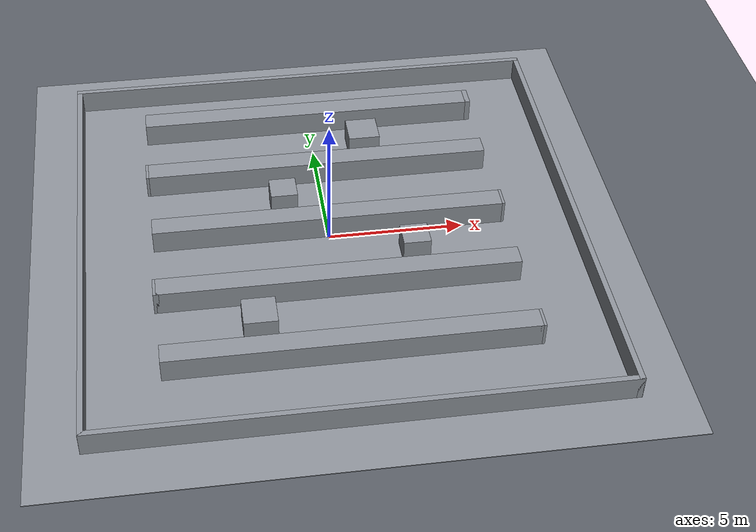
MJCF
<!-- Generated by robot_lab_maps/tools/gen_mjcf_worlds.py from
     maps/nav_warehouse/worlds/nav_warehouse.world - do not edit by hand. -->
<mujoco model="nav_warehouse">
  <option gravity="0 0 -9.81" />
  <compiler angle="radian" />
  <worldbody>
    <geom type="plane" size="100 100 0.1" contype="0" conaffinity="0" rgba="0.35 0.37 0.4 1" />
    <geom pos="0 0 -0.05" quat="1 0 0 0" rgba="0.55 0.57 0.6 1" type="box" size="11 11 0.05" />
    <geom pos="0 -9.1 0" quat="1 0 0 0" rgba="0.55 0.57 0.6 1" type="box" size="9.2 0.1 0.9" />
    <geom pos="0 9.1 0" quat="1 0 0 0" rgba="0.55 0.57 0.6 1" type="box" size="9.2 0.1 0.9" />
    <geom pos="-9.1 0 0" quat="1 0 0 0" rgba="0.55 0.57 0.6 1" type="box" size="0.1 9.2 0.9" />
    <geom pos="9.1 0 0" quat="1 0 0 0" rgba="0.55 0.57 0.6 1" type="box" size="0.1 9.2 0.9" />
    <geom pos="0 -6 0" quat="1 0 0 0" rgba="0.55 0.57 0.6 1" type="box" size="6.5 0.4 0.9" />
    <geom pos="0 -2.8 0" quat="1 0 0 0" rgba="0.55 0.57 0.6 1" type="box" size="6.5 0.4 0.9" />
    <geom pos="0 0.4 0" quat="1 0 0 0" rgba="0.55 0.57 0.6 1" type="box" size="6.5 0.4 0.9" />
    <geom pos="0 3.6 0" quat="1 0 0 0" rgba="0.55 0.57 0.6 1" type="box" size="6.5 0.4 0.9" />
    <geom pos="0 6.8 0" quat="1 0 0 0" rgba="0.55 0.57 0.6 1" type="box" size="6.5 0.4 0.9" />
    <geom pos="-3 -4.4 0" quat="1 0 0 0" rgba="0.55 0.57 0.6 1" type="box" size="0.6 0.6 0.9" />
    <geom pos="3 -1.2 0" quat="1 0 0 0" rgba="0.55 0.57 0.6 1" type="box" size="0.5 0.5 0.9" />
    <geom pos="-1.5 2 0" quat="1 0 0 0" rgba="0.55 0.57 0.6 1" type="box" size="0.5 0.5 0.9" />
    <geom pos="2 5.2 0" quat="1 0 0 0" rgba="0.55 0.57 0.6 1" type="box" size="0.6 0.6 0.9" />
    <geom pos="6.5 -6 0" quat="1 0 0 0" rgba="0.55 0.57 0.6 1" type="box" size="0.1 0.4 0.9" />
    <geom pos="-6.5 -2.8 0" quat="1 0 0 0" rgba="0.55 0.57 0.6 1" type="box" size="0.1 0.4 0.9" />
    <geom pos="6.5 0.4 0" quat="1 0 0 0" rgba="0.55 0.57 0.6 1" type="box" size="0.1 0.4 0.9" />
    <geom pos="-6.5 3.6 0" quat="1 0 0 0" rgba="0.55 0.57 0.6 1" type="box" size="0.1 0.4 0.9" />
    <geom pos="6.5 6.8 0" quat="1 0 0 0" rgba="0.55 0.57 0.6 1" type="box" size="0.1 0.4 0.9" />
    <light diffuse="0.8 0.8 0.8" pos="0 0 10" dir="0 0 -1" castshadow="true" />
    <light diffuse="0.3 0.3 0.3" pos="0 -6 6" dir="0 1 -1" />
  </worldbody>
</mujoco>
